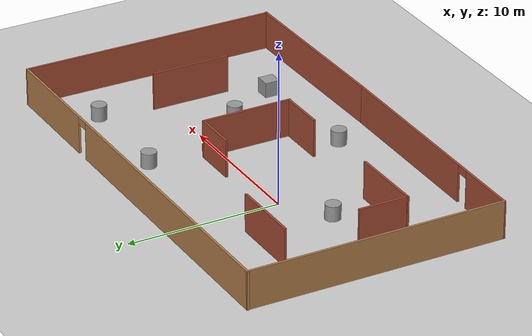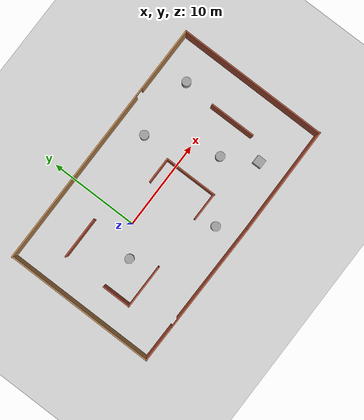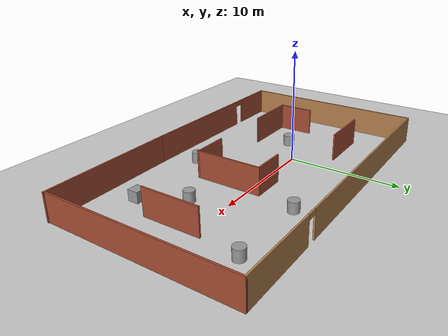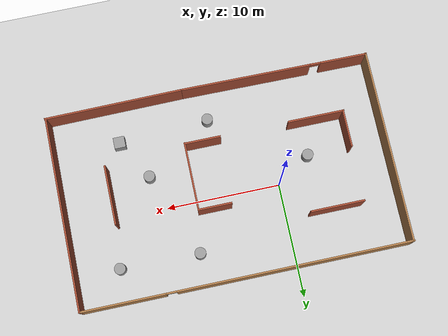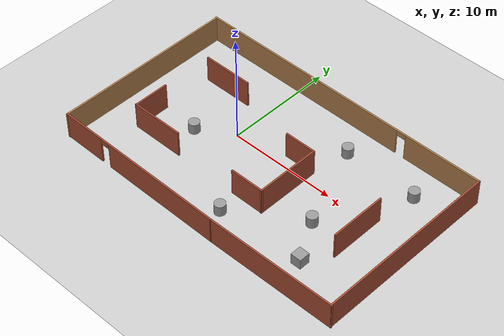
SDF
<sdf version="1.7">
 <world name="default">
  <light name="sun" type="directional">
   <pose>0 0 10 0 -0 0</pose>
   <diffuse>0.8 0.8 0.8 1</diffuse>
   <specular>0.2 0.2 0.2 1</specular>
   <attenuation>
    <range>1000</range>
    <constant>0.9</constant>
    <linear>0.01</linear>
    <quadratic>0.001</quadratic>
   </attenuation>
   <direction>-0.5 0.1 -0.9</direction>
   <spot><inner_angle>0</inner_angle><outer_angle>0</outer_angle><falloff>0</falloff></spot>
  </light>
  <model name="ground_plane">
   <static>1</static>
   <link name="link">
    <collision name="collision">
     <geometry><plane><normal>0 0 1</normal><size>100 100</size></plane></geometry>
     <surface>
      <contact><collide_bitmask>65535</collide_bitmask></contact>
      <friction><ode><mu>100</mu><mu2>50</mu2></ode></friction>
     </surface>
    </collision>
    <visual name="visual">
     <cast_shadows>0</cast_shadows>
     <geometry><plane><normal>0 0 1</normal><size>100 100</size></plane></geometry>
     <material>
      <script><uri>file://media/materials/scripts/gazebo.material</uri><name>Gazebo/Grey</name></script>
     </material>
    </visual>
   </link>
  </model>
  <gravity>0 0 -9.8</gravity>
  <magnetic_field>6e-06 2.3e-05 -4.2e-05</magnetic_field>
  <atmosphere type="adiabatic"/>
  <physics type="ode">
   <max_step_size>0.001</max_step_size>
   <real_time_factor>1</real_time_factor>
   <real_time_update_rate>1000</real_time_update_rate>
  </physics>
  <scene><ambient>0.4 0.4 0.4 1</ambient><background>0.7 0.7 0.7 1</background><shadows>1</shadows></scene>
  <audio><device>default</device></audio>
  <spherical_coordinates>
   <surface_model>EARTH_WGS84</surface_model>
   <latitude_deg>0</latitude_deg>
   <longitude_deg>0</longitude_deg>
   <elevation>0</elevation>
   <heading_deg>0</heading_deg>
  </spherical_coordinates>
  <model name="Gazebo_obstacle_world">
   <pose>4.46258 -1.09285 0 0 -0 0</pose>
   <link name="Wall_1">
    <pose>-6.04305 -8.46328 0 0 -0 -0.009242</pose>
    <visual name="Wall_1_Visual_0">
     <pose>-6.24304 0 1.25 0 -0 0</pose>
     <geometry><box><size>4.21401 0.15 2.5</size></box></geometry>
     <material>
      <script><uri>file://media/materials/scripts/gazebo.material</uri><name>Gazebo/Bricks</name></script>
      <ambient>0.996078 0.47451 0.0196078 1</ambient>
     </material>
     <meta><layer>0</layer></meta>
    </visual>
    <collision name="Wall_1_Collision_0">
     <geometry><box><size>4.21401 0.15 2.5</size></box></geometry>
     <pose>-6.24304 0 1.25 0 -0 0</pose>
    </collision>
    <visual name="Wall_1_Visual_1">
     <pose>2.557 0 1.25 0 -0 0</pose>
     <geometry><box><size>11.5861 0.15 2.5</size></box></geometry>
     <material>
      <script><uri>file://media/materials/scripts/gazebo.material</uri><name>Gazebo/Bricks</name></script>
      <ambient>0.996078 0.47451 0.0196078 1</ambient>
     </material>
     <meta><layer>0</layer></meta>
    </visual>
    <collision name="Wall_1_Collision_1">
     <geometry><box><size>11.5861 0.15 2.5</size></box></geometry>
     <pose>2.557 0 1.25 0 -0 0</pose>
    </collision>
    <visual name="Wall_1_Visual_2">
     <pose>-3.68604 0 2.25 0 -0 0</pose>
     <geometry><box><size>0.9 0.15 0.5</size></box></geometry>
     <material>
      <script><uri>file://media/materials/scripts/gazebo.material</uri><name>Gazebo/Bricks</name></script>
      <ambient>0.996078 0.47451 0.0196078 1</ambient>
     </material>
     <meta><layer>0</layer></meta>
    </visual>
    <collision name="Wall_1_Collision_2">
     <geometry><box><size>0.9 0.15 0.5</size></box></geometry>
     <pose>-3.68604 0 2.25 0 -0 0</pose>
    </collision>
   </link>
   <link name="Wall_15">
    <collision name="Wall_15_Collision">
     <geometry><box><size>5.25 0.15 2.5</size></box></geometry>
     <pose>0 0 1.25 0 -0 0</pose>
    </collision>
    <visual name="Wall_15_Visual">
     <pose>0 0 1.25 0 -0 0</pose>
     <geometry><box><size>5.25 0.15 2.5</size></box></geometry>
     <material>
      <script><uri>file://media/materials/scripts/gazebo.material</uri><name>Gazebo/Bricks</name></script>
      <ambient>0.996078 0.47451 0.0196078 1</ambient>
     </material>
     <meta><layer>0</layer></meta>
    </visual>
    <pose>10.0448 -0.665554 0 0 -0 -1.5708</pose>
   </link>
   <link name="Wall_19">
    <collision name="Wall_19_Collision">
     <geometry><box><size>4.75 0.15 2.5</size></box></geometry>
     <pose>0 0 1.25 0 -0 0</pose>
    </collision>
    <visual name="Wall_19_Visual">
     <pose>0 0 1.25 0 -0 0</pose>
     <geometry><box><size>4.75 0.15 2.5</size></box></geometry>
     <material>
      <script><uri>file://media/materials/scripts/gazebo.material</uri><name>Gazebo/Bricks</name></script>
      <ambient>0.996078 0.47451 0.0196078 1</ambient>
     </material>
     <meta><layer>0</layer></meta>
    </visual>
    <pose>-8.74333 4.31461 0 0 -0 3.14159</pose>
   </link>
   <link name="Wall_2">
    <collision name="Wall_2_Collision">
     <geometry><box><size>12.233 0.15 2.5</size></box></geometry>
     <pose>0 0 1.25 0 -0 0</pose>
    </collision>
    <visual name="Wall_2_Visual">
     <pose>0 0 1.25 0 -0 0</pose>
     <geometry><box><size>12.233 0.15 2.5</size></box></geometry>
     <material>
      <script><uri>file://media/materials/scripts/gazebo.material</uri><name>Gazebo/Bricks</name></script>
      <ambient>0.996078 0.47451 0.0196078 1</ambient>
     </material>
     <meta><layer>0</layer></meta>
    </visual>
    <pose>8.30347 -8.48625 0 0 -0 0.008856</pose>
   </link>
   <link name="Wall_21">
    <collision name="Wall_21_Collision">
     <geometry><box><size>5 0.15 2.5</size></box></geometry>
     <pose>0 0 1.25 0 -0 0</pose>
    </collision>
    <visual name="Wall_21_Visual">
     <pose>0 0 1.25 0 -0 0</pose>
     <geometry><box><size>5 0.15 2.5</size></box></geometry>
     <material>
      <script><uri>file://media/materials/scripts/gazebo.material</uri><name>Gazebo/Bricks</name></script>
      <ambient>0.996078 0.47451 0.0196078 1</ambient>
     </material>
     <meta><layer>0</layer></meta>
    </visual>
    <pose>-8.7407 -3.76858 0 0 -0 0</pose>
   </link>
   <link name="Wall_25">
    <collision name="Wall_25_Collision">
     <geometry><box><size>3.3101 0.15 2.5</size></box></geometry>
     <pose>0 0 1.25 0 -0 0</pose>
    </collision>
    <visual name="Wall_25_Visual">
     <pose>0 0 1.25 0 -0 0</pose>
     <geometry><box><size>3.3101 0.15 2.5</size></box></geometry>
     <material>
      <script><uri>file://media/materials/scripts/gazebo.material</uri><name>Gazebo/Bricks</name></script>
      <ambient>1 1 1 1</ambient>
     </material>
     <meta><layer>0</layer></meta>
    </visual>
    <pose>-11.1351 -2.15794 0 0 -0 1.5708</pose>
   </link>
   <link name="Wall_3">
    <collision name="Wall_3_Collision">
     <geometry><box><size>17.1226 0.15 2.5</size></box></geometry>
     <pose>0 0 1.25 0 -0 0</pose>
    </collision>
    <visual name="Wall_3_Visual">
     <pose>0 0 1.25 0 -0 0</pose>
     <geometry><box><size>17.1226 0.15 2.5</size></box></geometry>
     <material>
      <script><uri>file://media/materials/scripts/gazebo.material</uri><name>Gazebo/Bricks</name></script>
      <ambient>0.996078 0.47451 0.0196078 1</ambient>
     </material>
     <meta><layer>0</layer></meta>
    </visual>
    <pose>14.318 0.053547 0 0 -0 1.56764</pose>
   </link>
   <link name="Wall_4">
    <pose>-0.027081 8.54008 0 0 -0 3.14158</pose>
    <visual name="Wall_4_Visual_0">
     <pose>-10.7122 0 1.25 0 -0 0</pose>
     <geometry><box><size>7.3621 0.15 2.5</size></box></geometry>
     <material>
      <script><uri>file://media/materials/scripts/gazebo.material</uri><name>Gazebo/Wood</name></script>
      <ambient>0.996078 0.47451 0.0196078 1</ambient>
     </material>
     <meta><layer>0</layer></meta>
    </visual>
    <collision name="Wall_4_Collision_0">
     <geometry><box><size>7.3621 0.15 2.5</size></box></geometry>
     <pose>-10.7122 0 1.25 0 -0 0</pose>
    </collision>
    <visual name="Wall_4_Visual_1">
     <pose>4.13105 0 1.25 0 -0 0</pose>
     <geometry><box><size>20.5245 0.15 2.5</size></box></geometry>
     <material>
      <script><uri>file://media/materials/scripts/gazebo.material</uri><name>Gazebo/Wood</name></script>
      <ambient>0.996078 0.47451 0.0196078 1</ambient>
     </material>
     <meta><layer>0</layer></meta>
    </visual>
    <collision name="Wall_4_Collision_1">
     <geometry><box><size>20.5245 0.15 2.5</size></box></geometry>
     <pose>4.13105 0 1.25 0 -0 0</pose>
    </collision>
    <visual name="Wall_4_Visual_2">
     <pose>-6.58119 0 2.25 0 -0 0</pose>
     <geometry><box><size>0.9 0.15 0.5</size></box></geometry>
     <material>
      <script><uri>file://media/materials/scripts/gazebo.material</uri><name>Gazebo/Wood</name></script>
      <ambient>0.996078 0.47451 0.0196078 1</ambient>
     </material>
     <meta><layer>0</layer></meta>
    </visual>
    <collision name="Wall_4_Collision_2">
     <geometry><box><size>0.9 0.15 0.5</size></box></geometry>
     <pose>-6.58119 0 2.25 0 -0 0</pose>
    </collision>
   </link>
   <link name="Wall_5">
    <collision name="Wall_5_Collision">
     <geometry><box><size>17.1077 0.15 2.5</size></box></geometry>
     <pose>0 0 1.25 0 -0 0</pose>
    </collision>
    <visual name="Wall_5_Visual">
     <pose>0 0 1.25 0 -0 0</pose>
     <geometry><box><size>17.1077 0.15 2.5</size></box></geometry>
     <material>
      <script><uri>file://media/materials/scripts/gazebo.material</uri><name>Gazebo/Wood</name></script>
      <ambient>0.996078 0.47451 0.0196078 1</ambient>
     </material>
     <meta><layer>0</layer></meta>
    </visual>
    <pose>-14.3048 0.061467 0 0 -0 -1.57232</pose>
   </link>
   <link name="Wall_7">
    <collision name="Wall_7_Collision">
     <geometry><box><size>3 0.15 2.5</size></box></geometry>
     <pose>0 0 1.25 0 -0 0</pose>
    </collision>
    <visual name="Wall_7_Visual">
     <pose>0 0 1.25 0 -0 0</pose>
     <geometry><box><size>3 0.15 2.5</size></box></geometry>
     <material>
      <script><uri>file://media/materials/scripts/gazebo.material</uri><name>Gazebo/Bricks</name></script>
      <ambient>0.996078 0.47451 0.0196078 1</ambient>
     </material>
     <meta><layer>0</layer></meta>
    </visual>
    <pose>1.49846 2.16683 0 0 -0 0</pose>
   </link>
   <link name="Wall_8">
    <collision name="Wall_8_Collision">
     <geometry><box><size>6.09069 0.15 2.5</size></box></geometry>
     <pose>0 0 1.25 0 -0 0</pose>
    </collision>
    <visual name="Wall_8_Visual">
     <pose>0 0 1.25 0 -0 0</pose>
     <geometry><box><size>6.09069 0.15 2.5</size></box></geometry>
     <material>
      <script><uri>file://media/materials/scripts/gazebo.material</uri><name>Gazebo/Bricks</name></script>
      <ambient>1 1 1 1</ambient>
     </material>
     <meta><layer>0</layer></meta>
    </visual>
    <pose>2.92346 -0.803517 0 0 -0 -1.5708</pose>
   </link>
   <link name="Wall_9">
    <collision name="Wall_9_Collision">
     <geometry><box><size>3.25 0.15 2.5</size></box></geometry>
     <pose>0 0 1.25 0 -0 0</pose>
    </collision>
    <visual name="Wall_9_Visual">
     <pose>0 0 1.25 0 -0 0</pose>
     <geometry><box><size>3.25 0.15 2.5</size></box></geometry>
     <material>
      <script><uri>file://media/materials/scripts/gazebo.material</uri><name>Gazebo/Bricks</name></script>
      <ambient>1 1 1 1</ambient>
     </material>
     <meta><layer>0</layer></meta>
    </visual>
    <pose>1.37346 -3.74327 0 0 -0 3.14159</pose>
   </link>
   <static>1</static>
  </model>
  <model name="unit_cylinder">
   <pose>11 -3 0.499998 3e-06 -4e-06 0</pose>
   <link name="link">
    <inertial>
     <mass>1</mass>
     <inertia><ixx>0.145833</ixx><ixy>0</ixy><ixz>0</ixz><iyy>0.145833</iyy><iyz>0</iyz><izz>0.125</izz></inertia>
    </inertial>
    <collision name="collision">
     <geometry><cylinder><radius>0.5</radius><length>1</length></cylinder></geometry>
    </collision>
    <visual name="visual">
     <geometry><cylinder><radius>0.5</radius><length>1</length></cylinder></geometry>
     <material>
      <script><name>Gazebo/Grey</name><uri>file://media/materials/scripts/gazebo.material</uri></script>
     </material>
    </visual>
   </link>
  </model>
  <model name="unit_cylinder_0">
   <pose>-3 -2 0.499992 -3e-06 -4e-06 -0</pose>
   <link name="link">
    <inertial>
     <mass>1</mass>
     <inertia><ixx>0.145833</ixx><ixy>0</ixy><ixz>0</ixz><iyy>0.145833</iyy><iyz>0</iyz><izz>0.125</izz></inertia>
    </inertial>
    <collision name="collision">
     <geometry><cylinder><radius>0.5</radius><length>1</length></cylinder></geometry>
    </collision>
    <visual name="visual">
     <geometry><cylinder><radius>0.5</radius><length>1</length></cylinder></geometry>
     <material>
      <script><name>Gazebo/Grey</name><uri>file://media/materials/scripts/gazebo.material</uri></script>
     </material>
    </visual>
   </link>
  </model>
  <model name="unit_cylinder_1">
   <pose>5 -7 0.499993 -3e-06 -3e-06 0</pose>
   <link name="link">
    <inertial>
     <mass>1</mass>
     <inertia><ixx>0.145833</ixx><ixy>0</ixy><ixz>0</ixz><iyy>0.145833</iyy><iyz>0</iyz><izz>0.125</izz></inertia>
    </inertial>
    <collision name="collision">
     <geometry><cylinder><radius>0.5</radius><length>1</length></cylinder></geometry>
    </collision>
    <visual name="visual">
     <geometry><cylinder><radius>0.5</radius><length>1</length></cylinder></geometry>
     <material>
      <script><name>Gazebo/Grey</name><uri>file://media/materials/scripts/gazebo.material</uri></script>
     </material>
    </visual>
   </link>
  </model>
  <model name="unit_cylinder_2">
   <pose>8 4.5331 0.499997 3e-06 4e-06 -0</pose>
   <link name="link">
    <inertial>
     <mass>1</mass>
     <inertia><ixx>0.145833</ixx><ixy>0</ixy><ixz>0</ixz><iyy>0.145833</iyy><iyz>0</iyz><izz>0.125</izz></inertia>
    </inertial>
    <collision name="collision">
     <geometry><cylinder><radius>0.5</radius><length>1</length></cylinder></geometry>
    </collision>
    <visual name="visual">
     <geometry><cylinder><radius>0.5</radius><length>1</length></cylinder></geometry>
     <material>
      <script><name>Gazebo/Grey</name><uri>file://media/materials/scripts/gazebo.material</uri></script>
     </material>
    </visual>
   </link>
  </model>
  <model name="unit_cylinder_3">
   <pose>15 4.41874 0.499993 -3e-06 -4e-06 -0</pose>
   <link name="link">
    <inertial>
     <mass>1</mass>
     <inertia><ixx>0.145833</ixx><ixy>0</ixy><ixz>0</ixz><iyy>0.145833</iyy><iyz>0</iyz><izz>0.125</izz></inertia>
    </inertial>
    <collision name="collision">
     <geometry><cylinder><radius>0.5</radius><length>1</length></cylinder></geometry>
    </collision>
    <visual name="visual">
     <geometry><cylinder><radius>0.5</radius><length>1</length></cylinder></geometry>
     <material>
      <script><name>Gazebo/Grey</name><uri>file://media/materials/scripts/gazebo.material</uri></script>
     </material>
    </visual>
   </link>
  </model>
  <model name="unit_box">
   <pose>13 -6.5298 0.5 0 -0 0</pose>
   <link name="link">
    <inertial>
     <mass>1</mass>
     <inertia>
      <ixx>0.166667</ixx>
      <ixy>0</ixy>
      <ixz>0</ixz>
      <iyy>0.166667</iyy>
      <iyz>0</iyz>
      <izz>0.166667</izz>
     </inertia>
    </inertial>
    <collision name="collision"><geometry><box><size>1 1 1</size></box></geometry></collision>
    <visual name="visual">
     <geometry><box><size>1 1 1</size></box></geometry>
     <material>
      <script><name>Gazebo/Grey</name><uri>file://media/materials/scripts/gazebo.material</uri></script>
     </material>
    </visual>
   </link>
  </model>
 </world>
</sdf>
